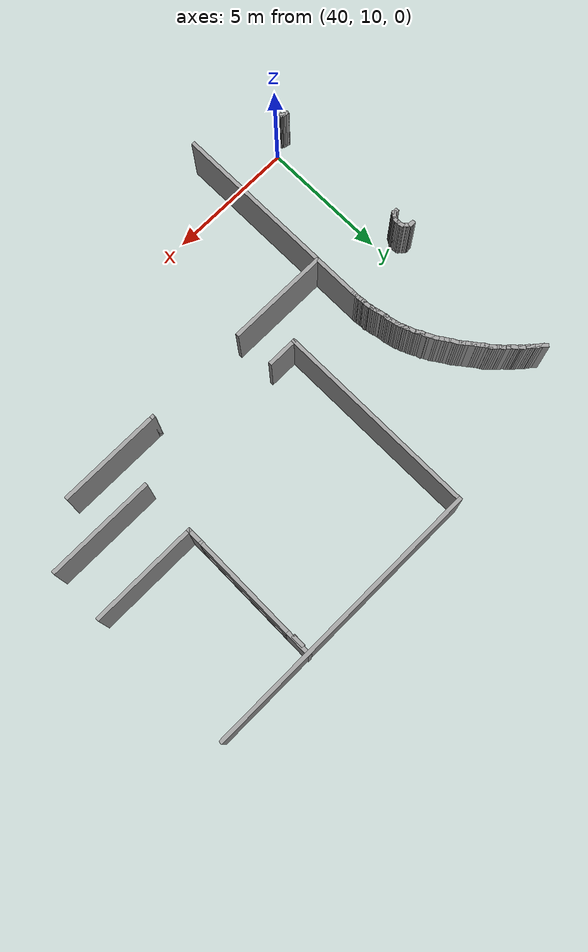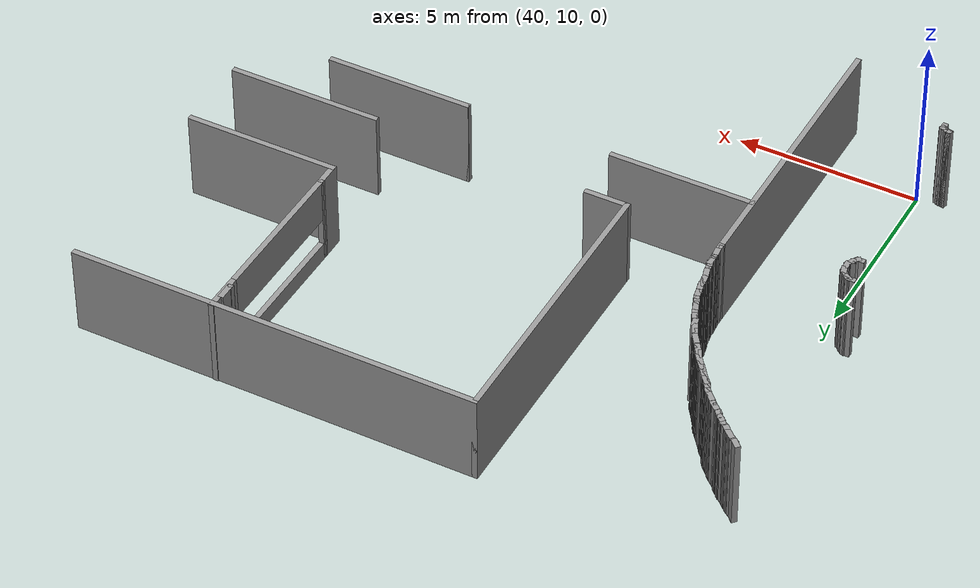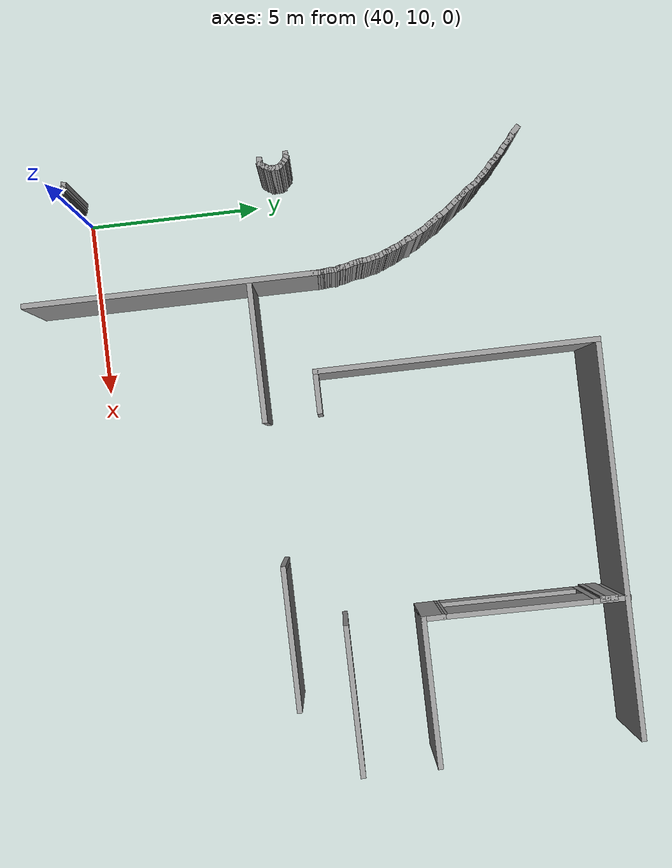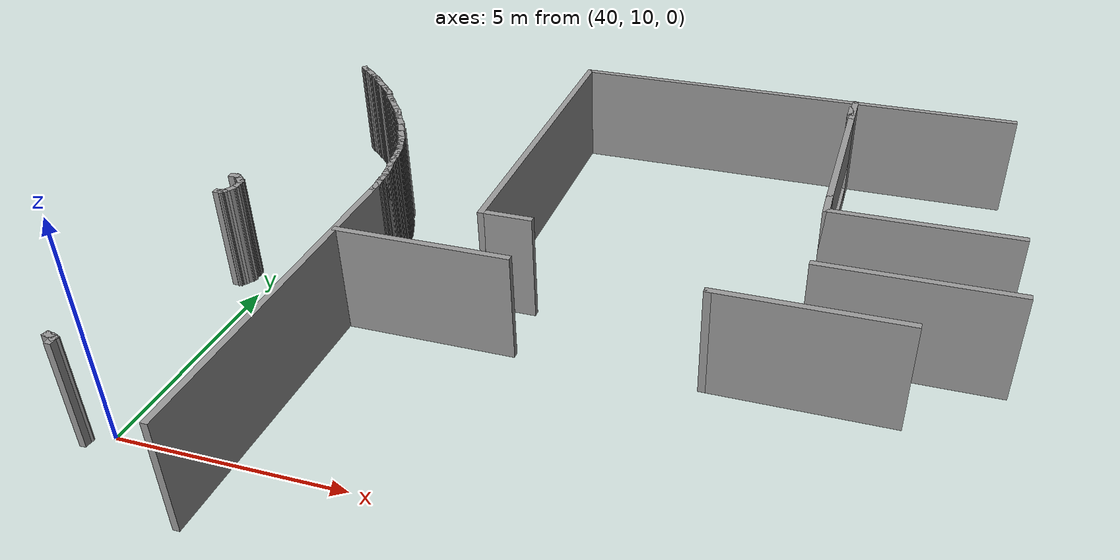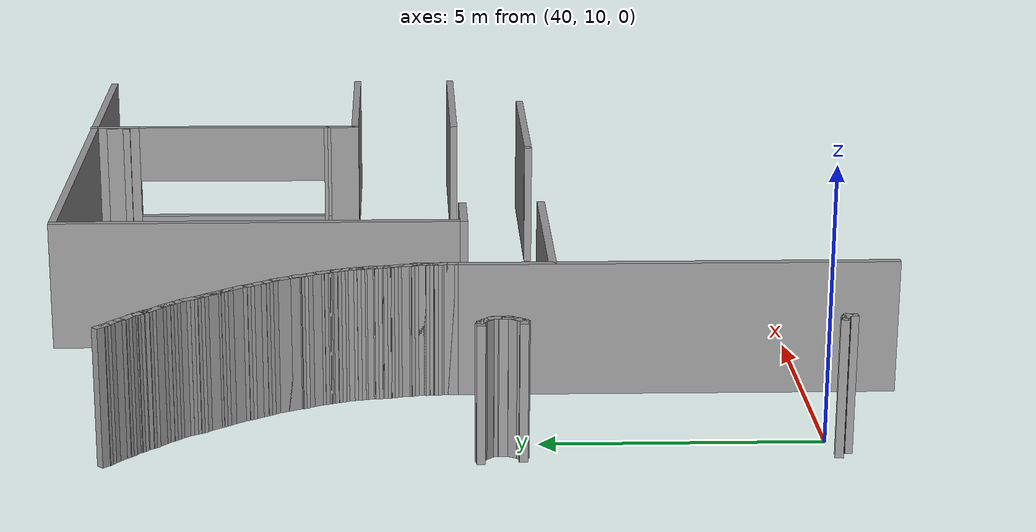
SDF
<sdf version="1.6">
 <model name="draft3">
  <pose>34.2026 -2.81154 0 0 -0 0</pose>
  <link name="Wall_223">
   <collision name="Wall_223_Collision">
    <geometry><box><size>0.299624 0.15 2.5</size></box></geometry>
    <pose>0 0 1.25 0 -0 0</pose>
   </collision>
   <visual name="Wall_223_Visual">
    <pose>0 0 1.25 0 -0 0</pose>
    <geometry><box><size>0.299624 0.15 2.5</size></box></geometry>
    <material>
     <script><uri>file://media/materials/scripts/gazebo.material</uri><name>Gazebo/Grey</name></script>
     <ambient>1 1 1 1</ambient>
    </material>
   </visual>
   <pose>5.04525 25.2209 0 0 0 -0.785398</pose>
  </link>
  <link name="Wall_224">
   <collision name="Wall_224_Collision">
    <geometry><box><size>0.329879 0.15 2.5</size></box></geometry>
    <pose>0 0 1.25 0 -0 0</pose>
   </collision>
   <visual name="Wall_224_Visual">
    <pose>0 0 1.25 0 -0 0</pose>
    <geometry><box><size>0.329879 0.15 2.5</size></box></geometry>
    <material>
     <script><uri>file://media/materials/scripts/gazebo.material</uri><name>Gazebo/Grey</name></script>
     <ambient>1 1 1 1</ambient>
    </material>
   </visual>
   <pose>5.17088 25.1151 0 0 0 -0.628796</pose>
  </link>
  <link name="Wall_225">
   <collision name="Wall_225_Collision">
    <geometry><box><size>0.30925 0.15 2.5</size></box></geometry>
    <pose>0 0 1.25 0 -0 0</pose>
   </collision>
   <visual name="Wall_225_Visual">
    <pose>0 0 1.25 0 -0 0</pose>
    <geometry><box><size>0.30925 0.15 2.5</size></box></geometry>
    <material>
     <script><uri>file://media/materials/scripts/gazebo.material</uri><name>Gazebo/Grey</name></script>
     <ambient>1 1 1 1</ambient>
    </material>
   </visual>
   <pose>5.30313 25.0093 0 0 0 -0.726642</pose>
  </link>
  <link name="Wall_226">
   <collision name="Wall_226_Collision">
    <geometry><box><size>0.299624 0.15 2.5</size></box></geometry>
    <pose>0 0 1.25 0 -0 0</pose>
   </collision>
   <visual name="Wall_226_Visual">
    <pose>0 0 1.25 0 -0 0</pose>
    <geometry><box><size>0.299624 0.15 2.5</size></box></geometry>
    <material>
     <script><uri>file://media/materials/scripts/gazebo.material</uri><name>Gazebo/Grey</name></script>
     <ambient>1 1 1 1</ambient>
    </material>
   </visual>
   <pose>5.41555 24.9035 0 0 0 -0.785398</pose>
  </link>
  <link name="Wall_227">
   <collision name="Wall_227_Collision">
    <geometry><box><size>0.329879 0.15 2.5</size></box></geometry>
    <pose>0 0 1.25 0 -0 0</pose>
   </collision>
   <visual name="Wall_227_Visual">
    <pose>0 0 1.25 0 -0 0</pose>
    <geometry><box><size>0.329879 0.15 2.5</size></box></geometry>
    <material>
     <script><uri>file://media/materials/scripts/gazebo.material</uri><name>Gazebo/Grey</name></script>
     <ambient>1 1 1 1</ambient>
    </material>
   </visual>
   <pose>5.54118 24.7977 0 0 0 -0.628796</pose>
  </link>
  <link name="Wall_228">
   <collision name="Wall_228_Collision">
    <geometry><box><size>0.253291 0.15 2.5</size></box></geometry>
    <pose>0 0 1.25 0 -0 0</pose>
   </collision>
   <visual name="Wall_228_Visual">
    <pose>0 0 1.25 0 -0 0</pose>
    <geometry><box><size>0.253291 0.15 2.5</size></box></geometry>
    <material>
     <script><uri>file://media/materials/scripts/gazebo.material</uri><name>Gazebo/Grey</name></script>
     <ambient>1 1 1 1</ambient>
    </material>
   </visual>
   <pose>5.64698 24.7051 0 0 0 -0.876058</pose>
  </link>
  <link name="Wall_229">
   <collision name="Wall_229_Collision">
    <geometry><box><size>0.253291 0.15 2.5</size></box></geometry>
    <pose>0 0 1.25 0 -0 0</pose>
   </collision>
   <visual name="Wall_229_Visual">
    <pose>0 0 1.25 0 -0 0</pose>
    <geometry><box><size>0.253291 0.15 2.5</size></box></geometry>
    <material>
     <script><uri>file://media/materials/scripts/gazebo.material</uri><name>Gazebo/Grey</name></script>
     <ambient>1 1 1 1</ambient>
    </material>
   </visual>
   <pose>5.71972 24.6324 0 0 0 -0.694738</pose>
  </link>
  <link name="Wall_230">
   <collision name="Wall_230_Collision">
    <geometry><box><size>0.300788 0.15 2.5</size></box></geometry>
    <pose>0 0 1.25 0 -0 0</pose>
   </collision>
   <visual name="Wall_230_Visual">
    <pose>0 0 1.25 0 -0 0</pose>
    <geometry><box><size>0.300788 0.15 2.5</size></box></geometry>
    <material>
     <script><uri>file://media/materials/scripts/gazebo.material</uri><name>Gazebo/Grey</name></script>
     <ambient>1 1 1 1</ambient>
    </material>
   </visual>
   <pose>5.80568 24.5398 0 0 0 -0.909753</pose>
  </link>
  <link name="Wall_231">
   <collision name="Wall_231_Collision">
    <geometry><box><size>0.30925 0.15 2.5</size></box></geometry>
    <pose>0 0 1.25 0 -0 0</pose>
   </collision>
   <visual name="Wall_231_Visual">
    <pose>0 0 1.25 0 -0 0</pose>
    <geometry><box><size>0.30925 0.15 2.5</size></box></geometry>
    <material>
     <script><uri>file://media/materials/scripts/gazebo.material</uri><name>Gazebo/Grey</name></script>
     <ambient>1 1 1 1</ambient>
    </material>
   </visual>
   <pose>5.91148 24.4274 0 0 0 -0.726642</pose>
  </link>
  <link name="Wall_232">
   <collision name="Wall_232_Collision">
    <geometry><box><size>0.30925 0.15 2.5</size></box></geometry>
    <pose>0 0 1.25 0 -0 0</pose>
   </collision>
   <visual name="Wall_232_Visual">
    <pose>0 0 1.25 0 -0 0</pose>
    <geometry><box><size>0.30925 0.15 2.5</size></box></geometry>
    <material>
     <script><uri>file://media/materials/scripts/gazebo.material</uri><name>Gazebo/Grey</name></script>
     <ambient>1 1 1 1</ambient>
    </material>
   </visual>
   <pose>6.03051 24.3216 0 0 0 -0.726642</pose>
  </link>
  <link name="Wall_233">
   <collision name="Wall_233_Collision">
    <geometry><box><size>0.30925 0.15 2.5</size></box></geometry>
    <pose>0 0 1.25 0 -0 0</pose>
   </collision>
   <visual name="Wall_233_Visual">
    <pose>0 0 1.25 0 -0 0</pose>
    <geometry><box><size>0.30925 0.15 2.5</size></box></geometry>
    <material>
     <script><uri>file://media/materials/scripts/gazebo.material</uri><name>Gazebo/Grey</name></script>
     <ambient>1 1 1 1</ambient>
    </material>
   </visual>
   <pose>6.14292 24.2092 0 0 0 -0.844154</pose>
  </link>
  <link name="Wall_234">
   <collision name="Wall_234_Collision">
    <geometry><box><size>0.299624 0.15 2.5</size></box></geometry>
    <pose>0 0 1.25 0 -0 0</pose>
   </collision>
   <visual name="Wall_234_Visual">
    <pose>0 0 1.25 0 -0 0</pose>
    <geometry><box><size>0.299624 0.15 2.5</size></box></geometry>
    <material>
     <script><uri>file://media/materials/scripts/gazebo.material</uri><name>Gazebo/Grey</name></script>
     <ambient>1 1 1 1</ambient>
    </material>
   </visual>
   <pose>6.24872 24.0968 0 0 0 -0.785398</pose>
  </link>
  <link name="Wall_235">
   <collision name="Wall_235_Collision">
    <geometry><box><size>0.290584 0.15 2.5</size></box></geometry>
    <pose>0 0 1.25 0 -0 0</pose>
   </collision>
   <visual name="Wall_235_Visual">
    <pose>0 0 1.25 0 -0 0</pose>
    <geometry><box><size>0.290584 0.15 2.5</size></box></geometry>
    <material>
     <script><uri>file://media/materials/scripts/gazebo.material</uri><name>Gazebo/Grey</name></script>
     <ambient>1 1 1 1</ambient>
    </material>
   </visual>
   <pose>6.34791 23.991 0 0 0 -0.851966</pose>
  </link>
  <link name="Wall_236">
   <collision name="Wall_236_Collision">
    <geometry><box><size>0.304229 0.15 2.5</size></box></geometry>
    <pose>0 0 1.25 0 -0 0</pose>
   </collision>
   <visual name="Wall_236_Visual">
    <pose>0 0 1.25 0 -0 0</pose>
    <geometry><box><size>0.304229 0.15 2.5</size></box></geometry>
    <material>
     <script><uri>file://media/materials/scripts/gazebo.material</uri><name>Gazebo/Grey</name></script>
     <ambient>1 1 1 1</ambient>
    </material>
   </visual>
   <pose>6.43387 23.872 0 0 0 -1.03038</pose>
  </link>
  <link name="Wall_237">
   <collision name="Wall_237_Collision">
    <geometry><box><size>0.274764 0.15 2.5</size></box></geometry>
    <pose>0 0 1.25 0 -0 0</pose>
   </collision>
   <visual name="Wall_237_Visual">
    <pose>0 0 1.25 0 -0 0</pose>
    <geometry><box><size>0.274764 0.15 2.5</size></box></geometry>
    <material>
     <script><uri>file://media/materials/scripts/gazebo.material</uri><name>Gazebo/Grey</name></script>
     <ambient>1 1 1 1</ambient>
    </material>
   </visual>
   <pose>6.50661 23.7529 0 0 0 -1.0122</pose>
  </link>
  <link name="Wall_238">
   <collision name="Wall_238_Collision">
    <geometry><box><size>0.30925 0.15 2.5</size></box></geometry>
    <pose>0 0 1.25 0 -0 0</pose>
   </collision>
   <visual name="Wall_238_Visual">
    <pose>0 0 1.25 0 -0 0</pose>
    <geometry><box><size>0.30925 0.15 2.5</size></box></geometry>
    <material>
     <script><uri>file://media/materials/scripts/gazebo.material</uri><name>Gazebo/Grey</name></script>
     <ambient>1 1 1 1</ambient>
    </material>
   </visual>
   <pose>6.59257 23.6405 0 0 0 -0.844154</pose>
  </link>
  <link name="Wall_239">
   <collision name="Wall_239_Collision">
    <geometry><box><size>0.28225 0.15 2.5</size></box></geometry>
    <pose>0 0 1.25 0 -0 0</pose>
   </collision>
   <visual name="Wall_239_Visual">
    <pose>0 0 1.25 0 -0 0</pose>
    <geometry><box><size>0.28225 0.15 2.5</size></box></geometry>
    <material>
     <script><uri>file://media/materials/scripts/gazebo.material</uri><name>Gazebo/Grey</name></script>
     <ambient>1 1 1 1</ambient>
    </material>
   </visual>
   <pose>6.68515 23.5281 0 0 0 -0.927295</pose>
  </link>
  <link name="Wall_240">
   <collision name="Wall_240_Collision">
    <geometry><box><size>0.348375 0.15 2.5</size></box></geometry>
    <pose>0 0 1.25 0 -0 0</pose>
   </collision>
   <visual name="Wall_240_Visual">
    <pose>0 0 1.25 0 -0 0</pose>
    <geometry><box><size>0.348375 0.15 2.5</size></box></geometry>
    <material>
     <script><uri>file://media/materials/scripts/gazebo.material</uri><name>Gazebo/Grey</name></script>
     <ambient>1 1 1 1</ambient>
    </material>
   </visual>
   <pose>6.78434 23.3959 0 0 0 -0.927295</pose>
  </link>
  <link name="Wall_241">
   <collision name="Wall_241_Collision">
    <geometry><box><size>0.337963 0.15 2.5</size></box></geometry>
    <pose>0 0 1.25 0 -0 0</pose>
   </collision>
   <visual name="Wall_241_Visual">
    <pose>0 0 1.25 0 -0 0</pose>
    <geometry><box><size>0.337963 0.15 2.5</size></box></geometry>
    <material>
     <script><uri>file://media/materials/scripts/gazebo.material</uri><name>Gazebo/Grey</name></script>
     <ambient>1 1 1 1</ambient>
    </material>
   </visual>
   <pose>6.90336 23.2438 0 0 0 -0.885067</pose>
  </link>
  <link name="Wall_242">
   <collision name="Wall_242_Collision">
    <geometry><box><size>0.366906 0.15 2.5</size></box></geometry>
    <pose>0 0 1.25 0 -0 0</pose>
   </collision>
   <visual name="Wall_242_Visual">
    <pose>0 0 1.25 0 -0 0</pose>
    <geometry><box><size>0.366906 0.15 2.5</size></box></geometry>
    <material>
     <script><uri>file://media/materials/scripts/gazebo.material</uri><name>Gazebo/Grey</name></script>
     <ambient>1 1 1 1</ambient>
    </material>
   </visual>
   <pose>7.029 23.0851 0 0 0 -0.915101</pose>
  </link>
  <link name="Wall_243">
   <collision name="Wall_243_Collision">
    <geometry><box><size>0.29786 0.15 2.5</size></box></geometry>
    <pose>0 0 1.25 0 -0 0</pose>
   </collision>
   <visual name="Wall_243_Visual">
    <pose>0 0 1.25 0 -0 0</pose>
    <geometry><box><size>0.29786 0.15 2.5</size></box></geometry>
    <material>
     <script><uri>file://media/materials/scripts/gazebo.material</uri><name>Gazebo/Grey</name></script>
     <ambient>1 1 1 1</ambient>
    </material>
   </visual>
   <pose>7.12819 22.933 0 0 0 -1.10715</pose>
  </link>
  <link name="Wall_244">
   <collision name="Wall_244_Collision">
    <geometry><box><size>0.359106 0.15 2.5</size></box></geometry>
    <pose>0 0 1.25 0 -0 0</pose>
   </collision>
   <visual name="Wall_244_Visual">
    <pose>0 0 1.25 0 -0 0</pose>
    <geometry><box><size>0.359106 0.15 2.5</size></box></geometry>
    <material>
     <script><uri>file://media/materials/scripts/gazebo.material</uri><name>Gazebo/Grey</name></script>
     <ambient>1 1 1 1</ambient>
    </material>
   </visual>
   <pose>7.22076 22.7809 0 0 0 -0.965252</pose>
  </link>
  <link name="Wall_245">
   <collision name="Wall_245_Collision">
    <geometry><box><size>0.322433 0.15 2.5</size></box></geometry>
    <pose>0 0 1.25 0 -0 0</pose>
   </collision>
   <visual name="Wall_245_Visual">
    <pose>0 0 1.25 0 -0 0</pose>
    <geometry><box><size>0.322433 0.15 2.5</size></box></geometry>
    <material>
     <script><uri>file://media/materials/scripts/gazebo.material</uri><name>Gazebo/Grey</name></script>
     <ambient>1 1 1 1</ambient>
    </material>
   </visual>
   <pose>7.32656 22.6222 0 0 0 -1.00407</pose>
  </link>
  <link name="Wall_246">
   <collision name="Wall_246_Collision">
    <geometry><box><size>0.329879 0.15 2.5</size></box></geometry>
    <pose>0 0 1.25 0 -0 0</pose>
   </collision>
   <visual name="Wall_246_Visual">
    <pose>0 0 1.25 0 -0 0</pose>
    <geometry><box><size>0.329879 0.15 2.5</size></box></geometry>
    <material>
     <script><uri>file://media/materials/scripts/gazebo.material</uri><name>Gazebo/Grey</name></script>
     <ambient>1 1 1 1</ambient>
    </material>
   </visual>
   <pose>7.42575 22.4767 0 0 0 -0.942</pose>
  </link>
  <link name="Wall_247">
   <collision name="Wall_247_Collision">
    <geometry><box><size>0.327432 0.15 2.5</size></box></geometry>
    <pose>0 0 1.25 0 -0 0</pose>
   </collision>
   <visual name="Wall_247_Visual">
    <pose>0 0 1.25 0 -0 0</pose>
    <geometry><box><size>0.327432 0.15 2.5</size></box></geometry>
    <material>
     <script><uri>file://media/materials/scripts/gazebo.material</uri><name>Gazebo/Grey</name></script>
     <ambient>1 1 1 1</ambient>
    </material>
   </visual>
   <pose>7.51832 22.3246 0 0 0 -1.10715</pose>
  </link>
  <link name="Wall_248">
   <collision name="Wall_248_Collision">
    <geometry><box><size>0.327432 0.15 2.5</size></box></geometry>
    <pose>0 0 1.25 0 -0 0</pose>
   </collision>
   <visual name="Wall_248_Visual">
    <pose>0 0 1.25 0 -0 0</pose>
    <geometry><box><size>0.327432 0.15 2.5</size></box></geometry>
    <material>
     <script><uri>file://media/materials/scripts/gazebo.material</uri><name>Gazebo/Grey</name></script>
     <ambient>1 1 1 1</ambient>
    </material>
   </visual>
   <pose>7.59767 22.1659 0 0 0 -1.10715</pose>
  </link>
  <link name="Wall_250">
   <collision name="Wall_250_Collision">
    <geometry><box><size>0.284869 0.15 2.5</size></box></geometry>
    <pose>0 0 1.25 0 -0 0</pose>
   </collision>
   <visual name="Wall_250_Visual">
    <pose>0 0 1.25 0 -0 0</pose>
    <geometry><box><size>0.284869 0.15 2.5</size></box></geometry>
    <material>
     <script><uri>file://media/materials/scripts/gazebo.material</uri><name>Gazebo/Grey</name></script>
     <ambient>1 1 1 1</ambient>
    </material>
   </visual>
   <pose>7.69025 21.994 0 0 0 -1.3734</pose>
  </link>
  <link name="Wall_251">
   <collision name="Wall_251_Collision">
    <geometry><box><size>0.304229 0.15 2.5</size></box></geometry>
    <pose>0 0 1.25 0 -0 0</pose>
   </collision>
   <visual name="Wall_251_Visual">
    <pose>0 0 1.25 0 -0 0</pose>
    <geometry><box><size>0.304229 0.15 2.5</size></box></geometry>
    <material>
     <script><uri>file://media/materials/scripts/gazebo.material</uri><name>Gazebo/Grey</name></script>
     <ambient>1 1 1 1</ambient>
    </material>
   </visual>
   <pose>7.74315 21.8618 0 0 0 -1.03038</pose>
  </link>
  <link name="Wall_252">
   <collision name="Wall_252_Collision">
    <geometry><box><size>0.209144 0.15 2.5</size></box></geometry>
    <pose>0 0 1.25 0 -0 0</pose>
   </collision>
   <visual name="Wall_252_Visual">
    <pose>0 0 1.25 0 -0 0</pose>
    <geometry><box><size>0.209144 0.15 2.5</size></box></geometry>
    <material>
     <script><uri>file://media/materials/scripts/gazebo.material</uri><name>Gazebo/Grey</name></script>
     <ambient>1 1 1 1</ambient>
    </material>
   </visual>
   <pose>7.79605 21.7692 0 0 0 -1.10715</pose>
  </link>
  <link name="Wall_253">
   <collision name="Wall_253_Collision">
    <geometry><box><size>0.268288 0.15 2.5</size></box></geometry>
    <pose>0 0 1.25 0 -0 0</pose>
   </collision>
   <visual name="Wall_253_Visual">
    <pose>0 0 1.25 0 -0 0</pose>
    <geometry><box><size>0.268288 0.15 2.5</size></box></geometry>
    <material>
     <script><uri>file://media/materials/scripts/gazebo.material</uri><name>Gazebo/Grey</name></script>
     <ambient>1 1 1 1</ambient>
    </material>
   </visual>
   <pose>7.83572 21.6898 0 0 0 -1.10715</pose>
  </link>
  <link name="Wall_254">
   <collision name="Wall_254_Collision">
    <geometry><box><size>0.275463 0.15 2.5</size></box></geometry>
    <pose>0 0 1.25 0 -0 0</pose>
   </collision>
   <visual name="Wall_254_Visual">
    <pose>0 0 1.25 0 -0 0</pose>
    <geometry><box><size>0.275463 0.15 2.5</size></box></geometry>
    <material>
     <script><uri>file://media/materials/scripts/gazebo.material</uri><name>Gazebo/Grey</name></script>
     <ambient>1 1 1 1</ambient>
    </material>
   </visual>
   <pose>7.88201 21.5774 0 0 0 -1.24905</pose>
  </link>
  <link name="Wall_255">
   <collision name="Wall_255_Collision">
    <geometry><box><size>0.250719 0.15 2.5</size></box></geometry>
    <pose>0 0 1.25 0 -0 0</pose>
   </collision>
   <visual name="Wall_255_Visual">
    <pose>0 0 1.25 0 -0 0</pose>
    <geometry><box><size>0.250719 0.15 2.5</size></box></geometry>
    <material>
     <script><uri>file://media/materials/scripts/gazebo.material</uri><name>Gazebo/Grey</name></script>
     <ambient>1 1 1 1</ambient>
    </material>
   </visual>
   <pose>7.92168 21.4716 0 0 0 -1.1659</pose>
  </link>
  <link name="Wall_256">
   <collision name="Wall_256_Collision">
    <geometry><box><size>0.209144 0.15 2.5</size></box></geometry>
    <pose>0 0 1.25 0 -0 0</pose>
   </collision>
   <visual name="Wall_256_Visual">
    <pose>0 0 1.25 0 -0 0</pose>
    <geometry><box><size>0.209144 0.15 2.5</size></box></geometry>
    <material>
     <script><uri>file://media/materials/scripts/gazebo.material</uri><name>Gazebo/Grey</name></script>
     <ambient>1 1 1 1</ambient>
    </material>
   </visual>
   <pose>7.95475 21.3989 0 0 0 -1.10715</pose>
  </link>
  <link name="Wall_257">
   <collision name="Wall_257_Collision">
    <geometry><box><size>0.246279 0.15 2.5</size></box></geometry>
    <pose>0 0 1.25 0 -0 0</pose>
   </collision>
   <visual name="Wall_257_Visual">
    <pose>0 0 1.25 0 -0 0</pose>
    <geometry><box><size>0.246279 0.15 2.5</size></box></geometry>
    <material>
     <script><uri>file://media/materials/scripts/gazebo.material</uri><name>Gazebo/Grey</name></script>
     <ambient>1 1 1 1</ambient>
    </material>
   </visual>
   <pose>7.9812 21.3261 0 0 0 -1.2925</pose>
  </link>
  <link name="Wall_258">
   <collision name="Wall_258_Collision">
    <geometry><box><size>0.280251 0.15 2.5</size></box></geometry>
    <pose>0 0 1.25 0 -0 0</pose>
   </collision>
   <visual name="Wall_258_Visual">
    <pose>0 0 1.25 0 -0 0</pose>
    <geometry><box><size>0.280251 0.15 2.5</size></box></geometry>
    <material>
     <script><uri>file://media/materials/scripts/gazebo.material</uri><name>Gazebo/Grey</name></script>
     <ambient>1 1 1 1</ambient>
    </material>
   </visual>
   <pose>8.02087 21.2203 0 0 0 -1.15257</pose>
  </link>
  <link name="Wall_259">
   <collision name="Wall_259_Collision">
    <geometry><box><size>0.259056 0.15 2.5</size></box></geometry>
    <pose>0 0 1.25 0 -0 0</pose>
   </collision>
   <visual name="Wall_259_Visual">
    <pose>0 0 1.25 0 -0 0</pose>
    <geometry><box><size>0.259056 0.15 2.5</size></box></geometry>
    <material>
     <script><uri>file://media/materials/scripts/gazebo.material</uri><name>Gazebo/Grey</name></script>
     <ambient>1 1 1 1</ambient>
    </material>
   </visual>
   <pose>8.06055 21.1079 0 0 0 -1.32582</pose>
  </link>
  <link name="Wall_260">
   <collision name="Wall_260_Collision">
    <geometry><box><size>0.284869 0.15 2.5</size></box></geometry>
    <pose>0 0 1.25 0 -0 0</pose>
   </collision>
   <visual name="Wall_260_Visual">
    <pose>0 0 1.25 0 -0 0</pose>
    <geometry><box><size>0.284869 0.15 2.5</size></box></geometry>
    <material>
     <script><uri>file://media/materials/scripts/gazebo.material</uri><name>Gazebo/Grey</name></script>
     <ambient>1 1 1 1</ambient>
    </material>
   </visual>
   <pose>8.087 20.9889 0 0 0 -1.3734</pose>
  </link>
  <link name="Wall_261">
   <collision name="Wall_261_Collision">
    <geometry><box><size>0.259056 0.15 2.5</size></box></geometry>
    <pose>0 0 1.25 0 -0 0</pose>
   </collision>
   <visual name="Wall_261_Visual">
    <pose>0 0 1.25 0 -0 0</pose>
    <geometry><box><size>0.259056 0.15 2.5</size></box></geometry>
    <material>
     <script><uri>file://media/materials/scripts/gazebo.material</uri><name>Gazebo/Grey</name></script>
     <ambient>1 1 1 1</ambient>
    </material>
   </visual>
   <pose>8.11345 20.8699 0 0 0 -1.32582</pose>
  </link>
  <link name="Wall_262">
   <collision name="Wall_262_Collision">
    <geometry><box><size>0.271928 0.15 2.5</size></box></geometry>
    <pose>0 0 1.25 0 -0 0</pose>
   </collision>
   <visual name="Wall_262_Visual">
    <pose>0 0 1.25 0 -0 0</pose>
    <geometry><box><size>0.271928 0.15 2.5</size></box></geometry>
    <material>
     <script><uri>file://media/materials/scripts/gazebo.material</uri><name>Gazebo/Grey</name></script>
     <ambient>1 1 1 1</ambient>
    </material>
   </visual>
   <pose>8.1399 20.7575 0 0 0 -1.35213</pose>
  </link>
  <link name="Wall_263">
   <collision name="Wall_263_Collision">
    <geometry><box><size>0.242575 0.15 2.5</size></box></geometry>
    <pose>0 0 1.25 0 -0 0</pose>
   </collision>
   <visual name="Wall_263_Visual">
    <pose>0 0 1.25 0 -0 0</pose>
    <geometry><box><size>0.242575 0.15 2.5</size></box></geometry>
    <material>
     <script><uri>file://media/materials/scripts/gazebo.material</uri><name>Gazebo/Grey</name></script>
     <ambient>1 1 1 1</ambient>
    </material>
   </visual>
   <pose>8.15312 20.6517 0 0 0 -1.5708</pose>
  </link>
  <link name="Wall_264">
   <collision name="Wall_264_Collision">
    <geometry><box><size>0.217435 0.15 2.5</size></box></geometry>
    <pose>0 0 1.25 0 -0 0</pose>
   </collision>
   <visual name="Wall_264_Visual">
    <pose>0 0 1.25 0 -0 0</pose>
    <geometry><box><size>0.217435 0.15 2.5</size></box></geometry>
    <material>
     <script><uri>file://media/materials/scripts/gazebo.material</uri><name>Gazebo/Grey</name></script>
     <ambient>1 1 1 1</ambient>
    </material>
   </visual>
   <pose>8.15973 20.5723 0 0 0 -1.3734</pose>
  </link>
  <link name="Wall_265">
   <collision name="Wall_265_Collision">
    <geometry><box><size>0.243515 0.15 2.5</size></box></geometry>
    <pose>0 0 1.25 0 -0 0</pose>
   </collision>
   <visual name="Wall_265_Visual">
    <pose>0 0 1.25 0 -0 0</pose>
    <geometry><box><size>0.243515 0.15 2.5</size></box></geometry>
    <material>
     <script><uri>file://media/materials/scripts/gazebo.material</uri><name>Gazebo/Grey</name></script>
     <ambient>1 1 1 1</ambient>
    </material>
   </visual>
   <pose>8.17296 20.493 0 0 0 -1.4289</pose>
  </link>
  <link name="Wall_266">
   <collision name="Wall_266_Collision">
    <geometry><box><size>0.271928 0.15 2.5</size></box></geometry>
    <pose>0 0 1.25 0 -0 0</pose>
   </collision>
   <visual name="Wall_266_Visual">
    <pose>0 0 1.25 0 -0 0</pose>
    <geometry><box><size>0.271928 0.15 2.5</size></box></geometry>
    <material>
     <script><uri>file://media/materials/scripts/gazebo.material</uri><name>Gazebo/Grey</name></script>
     <ambient>1 1 1 1</ambient>
    </material>
   </visual>
   <pose>8.1928 20.3872 0 0 0 -1.35213</pose>
  </link>
  <link name="Wall_267">
   <collision name="Wall_267_Collision">
    <geometry><box><size>0.288073 0.15 2.5</size></box></geometry>
    <pose>0 0 1.25 0 -0 0</pose>
   </collision>
   <visual name="Wall_267_Visual">
    <pose>0 0 1.25 0 -0 0</pose>
    <geometry><box><size>0.288073 0.15 2.5</size></box></geometry>
    <material>
     <script><uri>file://media/materials/scripts/gazebo.material</uri><name>Gazebo/Grey</name></script>
     <ambient>1 1 1 1</ambient>
    </material>
   </visual>
   <pose>8.22586 20.2615 0 0 0 -1.27934</pose>
  </link>
  <link name="Wall_268">
   <collision name="Wall_268_Collision">
    <geometry><box><size>0.29786 0.15 2.5</size></box></geometry>
    <pose>0 0 1.25 0 -0 0</pose>
   </collision>
   <visual name="Wall_268_Visual">
    <pose>0 0 1.25 0 -0 0</pose>
    <geometry><box><size>0.29786 0.15 2.5</size></box></geometry>
    <material>
     <script><uri>file://media/materials/scripts/gazebo.material</uri><name>Gazebo/Grey</name></script>
     <ambient>1 1 1 1</ambient>
    </material>
   </visual>
   <pose>8.25892 20.1227 0 0 0 -1.39094</pose>
  </link>
  <link name="Wall_269">
   <collision name="Wall_269_Collision">
    <geometry><box><size>0.242575 0.15 2.5</size></box></geometry>
    <pose>0 0 1.25 0 -0 0</pose>
   </collision>
   <visual name="Wall_269_Visual">
    <pose>0 0 1.25 0 -0 0</pose>
    <geometry><box><size>0.242575 0.15 2.5</size></box></geometry>
    <material>
     <script><uri>file://media/materials/scripts/gazebo.material</uri><name>Gazebo/Grey</name></script>
     <ambient>1 1 1 1</ambient>
    </material>
   </visual>
   <pose>8.27876 20.0036 0 0 0 -1.4289</pose>
  </link>
  <link name="Wall_270">
   <collision name="Wall_270_Collision">
    <geometry><box><size>0.221219 0.15 2.5</size></box></geometry>
    <pose>0 0 1.25 0 -0 0</pose>
   </collision>
   <visual name="Wall_270_Visual">
    <pose>0 0 1.25 0 -0 0</pose>
    <geometry><box><size>0.221219 0.15 2.5</size></box></geometry>
    <material>
     <script><uri>file://media/materials/scripts/gazebo.material</uri><name>Gazebo/Grey</name></script>
     <ambient>1 1 1 1</ambient>
    </material>
   </visual>
   <pose>8.2986 19.9243 0 0 0 -1.19029</pose>
  </link>
  <link name="Wall_271">
   <collision name="Wall_271_Collision">
    <geometry><box><size>0.22935 0.15 2.5</size></box></geometry>
    <pose>0 0 1.25 0 -0 0</pose>
   </collision>
   <visual name="Wall_271_Visual">
    <pose>0 0 1.25 0 -0 0</pose>
    <geometry><box><size>0.22935 0.15 2.5</size></box></geometry>
    <material>
     <script><uri>file://media/materials/scripts/gazebo.material</uri><name>Gazebo/Grey</name></script>
     <ambient>1 1 1 1</ambient>
    </material>
   </visual>
   <pose>8.31182 19.8516 0 0 0 -1.5708</pose>
  </link>
  <link name="Wall_272">
   <collision name="Wall_272_Collision">
    <geometry><box><size>0.216125 0.15 2.5</size></box></geometry>
    <pose>0 0 1.25 0 -0 0</pose>
   </collision>
   <visual name="Wall_272_Visual">
    <pose>0 0 1.25 0 -0 0</pose>
    <geometry><box><size>0.216125 0.15 2.5</size></box></geometry>
    <material>
     <script><uri>file://media/materials/scripts/gazebo.material</uri><name>Gazebo/Grey</name></script>
     <ambient>1 1 1 1</ambient>
    </material>
   </visual>
   <pose>8.31182 19.7788 0 0 0 -1.5708</pose>
  </link>
  <link name="Wall_273">
   <collision name="Wall_273_Collision">
    <geometry><box><size>0.216125 0.15 2.5</size></box></geometry>
    <pose>0 0 1.25 0 -0 0</pose>
   </collision>
   <visual name="Wall_273_Visual">
    <pose>0 0 1.25 0 -0 0</pose>
    <geometry><box><size>0.216125 0.15 2.5</size></box></geometry>
    <material>
     <script><uri>file://media/materials/scripts/gazebo.material</uri><name>Gazebo/Grey</name></script>
     <ambient>1 1 1 1</ambient>
    </material>
   </visual>
   <pose>8.31182 19.7127 0 0 0 -1.5708</pose>
  </link>
  <link name="Wall_274">
   <collision name="Wall_274_Collision">
    <geometry><box><size>0.230445 0.15 2.5</size></box></geometry>
    <pose>0 0 1.25 0 -0 0</pose>
   </collision>
   <visual name="Wall_274_Visual">
    <pose>0 0 1.25 0 -0 0</pose>
    <geometry><box><size>0.230445 0.15 2.5</size></box></geometry>
    <material>
     <script><uri>file://media/materials/scripts/gazebo.material</uri><name>Gazebo/Grey</name></script>
     <ambient>1 1 1 1</ambient>
    </material>
   </visual>
   <pose>8.31843 19.64 0 0 0 -1.40565</pose>
  </link>
  <link name="Wall_275">
   <collision name="Wall_275_Collision">
    <geometry><box><size>0.22935 0.15 2.5</size></box></geometry>
    <pose>0 0 1.25 0 -0 0</pose>
   </collision>
   <visual name="Wall_275_Visual">
    <pose>0 0 1.25 0 -0 0</pose>
    <geometry><box><size>0.22935 0.15 2.5</size></box></geometry>
    <material>
     <script><uri>file://media/materials/scripts/gazebo.material</uri><name>Gazebo/Grey</name></script>
     <ambient>1 1 1 1</ambient>
    </material>
   </visual>
   <pose>8.32505 19.5606 0 0 0 -1.5708</pose>
  </link>
  <link name="Wall_276">
   <collision name="Wall_276_Collision">
    <geometry><box><size>0.256623 0.15 2.5</size></box></geometry>
    <pose>0 0 1.25 0 -0 0</pose>
   </collision>
   <visual name="Wall_276_Visual">
    <pose>0 0 1.25 0 -0 0</pose>
    <geometry><box><size>0.256623 0.15 2.5</size></box></geometry>
    <material>
     <script><uri>file://media/materials/scripts/gazebo.material</uri><name>Gazebo/Grey</name></script>
     <ambient>1 1 1 1</ambient>
    </material>
   </visual>
   <pose>8.33166 19.468 0 0 0 -1.44644</pose>
  </link>
  <link name="Wall_277">
   <collision name="Wall_277_Collision">
    <geometry><box><size>0.269025 0.15 2.5</size></box></geometry>
    <pose>0 0 1.25 0 -0 0</pose>
   </collision>
   <visual name="Wall_277_Visual">
    <pose>0 0 1.25 0 -0 0</pose>
    <geometry><box><size>0.269025 0.15 2.5</size></box></geometry>
    <material>
     <script><uri>file://media/materials/scripts/gazebo.material</uri><name>Gazebo/Grey</name></script>
     <ambient>1 1 1 1</ambient>
    </material>
   </visual>
   <pose>8.33827 19.3556 0 0 0 -1.5708</pose>
  </link>
  <link name="Wall_278">
   <collision name="Wall_278_Collision">
    <geometry><box><size>0.216125 0.15 2.5</size></box></geometry>
    <pose>0 0 1.25 0 -0 0</pose>
   </collision>
   <visual name="Wall_278_Visual">
    <pose>0 0 1.25 0 -0 0</pose>
    <geometry><box><size>0.216125 0.15 2.5</size></box></geometry>
    <material>
     <script><uri>file://media/materials/scripts/gazebo.material</uri><name>Gazebo/Grey</name></script>
     <ambient>1 1 1 1</ambient>
    </material>
   </visual>
   <pose>8.33827 19.263 0 0 0 -1.5708</pose>
  </link>
  <link name="Wall_280">
   <collision name="Wall_280_Collision">
    <geometry><box><size>8.25 0.15 2.5</size></box></geometry>
    <pose>0 0 1.25 0 -0 0</pose>
   </collision>
   <visual name="Wall_280_Visual">
    <pose>0 0 1.25 0 -0 0</pose>
    <geometry><box><size>8.25 0.15 2.5</size></box></geometry>
    <material>
     <script><uri>file://media/materials/scripts/gazebo.material</uri><name>Gazebo/Grey</name></script>
     <ambient>1 1 1 1</ambient>
    </material>
   </visual>
   <pose>8.33827 15.2461 0 0 0 -1.5708</pose>
  </link>
  <link name="Wall_282">
   <collision name="Wall_282_Collision">
    <geometry><box><size>4 0.15 2.5</size></box></geometry>
    <pose>0 0 1.25 0 -0 0</pose>
   </collision>
   <visual name="Wall_282_Visual">
    <pose>0 0 1.25 0 -0 0</pose>
    <geometry><box><size>4 0.15 2.5</size></box></geometry>
    <material>
     <script><uri>file://media/materials/scripts/gazebo.material</uri><name>Gazebo/Grey</name></script>
     <ambient>1 1 1 1</ambient>
    </material>
   </visual>
   <pose>10.3002 17.4426 0 0 -0 3.14159</pose>
  </link>
  <link name="Wall_284">
   <collision name="Wall_284_Collision">
    <geometry><box><size>1.25 0.15 2.5</size></box></geometry>
    <pose>0 0 1.25 0 -0 0</pose>
   </collision>
   <visual name="Wall_284_Visual">
    <pose>0 0 1.25 0 -0 0</pose>
    <geometry><box><size>1.25 0.15 2.5</size></box></geometry>
    <material>
     <script><uri>file://media/materials/scripts/gazebo.material</uri><name>Gazebo/Grey</name></script>
     <ambient>1 1 1 1</ambient>
    </material>
   </visual>
   <pose>11.5942 18.9799 0 0 -0 3.14159</pose>
  </link>
  <link name="Wall_285">
   <collision name="Wall_285_Collision">
    <geometry><box><size>8 0.15 2.5</size></box></geometry>
    <pose>0 0 1.25 0 -0 0</pose>
   </collision>
   <visual name="Wall_285_Visual">
    <pose>0 0 1.25 0 -0 0</pose>
    <geometry><box><size>8 0.15 2.5</size></box></geometry>
    <material>
     <script><uri>file://media/materials/scripts/gazebo.material</uri><name>Gazebo/Grey</name></script>
     <ambient>1 1 1 1</ambient>
    </material>
   </visual>
   <pose>11.0442 22.9049 0 0 -0 1.5708</pose>
  </link>
  <link name="Wall_286">
   <collision name="Wall_286_Collision">
    <geometry><box><size>11.25 0.15 2.5</size></box></geometry>
    <pose>0 0 1.25 0 -0 0</pose>
   </collision>
   <visual name="Wall_286_Visual">
    <pose>0 0 1.25 0 -0 0</pose>
    <geometry><box><size>11.25 0.15 2.5</size></box></geometry>
    <material>
     <script><uri>file://media/materials/scripts/gazebo.material</uri><name>Gazebo/Grey</name></script>
     <ambient>1 1 1 1</ambient>
    </material>
   </visual>
   <pose>16.5942 26.8299 0 0 -0 0</pose>
  </link>
  <link name="Wall_288">
   <collision name="Wall_288_Collision">
    <geometry><box><size>0.16 0.15 2.5</size></box></geometry>
    <pose>0 0 1.25 0 -0 0</pose>
   </collision>
   <visual name="Wall_288_Visual">
    <pose>0 0 1.25 0 -0 0</pose>
    <geometry><box><size>0.16 0.15 2.5</size></box></geometry>
    <material>
     <script><uri>file://media/materials/scripts/gazebo.material</uri><name>Gazebo/Grey</name></script>
     <ambient>1 1 1 1</ambient>
    </material>
   </visual>
   <pose>18.1771 26.1406 0 0 -0 0</pose>
  </link>
  <link name="Wall_289">
   <collision name="Wall_289_Collision">
    <geometry><box><size>0.5 0.15 2.5</size></box></geometry>
    <pose>0 0 1.25 0 -0 0</pose>
   </collision>
   <visual name="Wall_289_Visual">
    <pose>0 0 1.25 0 -0 0</pose>
    <geometry><box><size>0.5 0.15 2.5</size></box></geometry>
    <material>
     <script><uri>file://media/materials/scripts/gazebo.material</uri><name>Gazebo/Grey</name></script>
     <ambient>1 1 1 1</ambient>
    </material>
   </visual>
   <pose>18.1821 26.3156 0 0 -0 1.5708</pose>
  </link>
  <link name="Wall_291">
   <collision name="Wall_291_Collision">
    <geometry><box><size>0.75 0.15 2.5</size></box></geometry>
    <pose>0 0 1.25 0 -0 0</pose>
   </collision>
   <visual name="Wall_291_Visual">
    <pose>0 0 1.25 0 -0 0</pose>
    <geometry><box><size>0.75 0.15 2.5</size></box></geometry>
    <material>
     <script><uri>file://media/materials/scripts/gazebo.material</uri><name>Gazebo/Grey</name></script>
     <ambient>1 1 1 1</ambient>
    </material>
   </visual>
   <pose>18.1721 21.4714 0 0 0 -1.5708</pose>
  </link>
  <link name="Wall_292">
   <collision name="Wall_292_Collision">
    <geometry><box><size>4.25 0.15 2.5</size></box></geometry>
    <pose>0 0 1.25 0 -0 0</pose>
   </collision>
   <visual name="Wall_292_Visual">
    <pose>0 0 1.25 0 -0 0</pose>
    <geometry><box><size>4.25 0.15 2.5</size></box></geometry>
    <material>
     <script><uri>file://media/materials/scripts/gazebo.material</uri><name>Gazebo/Grey</name></script>
     <ambient>1 1 1 1</ambient>
    </material>
   </visual>
   <pose>20.2221 21.1714 0 0 -0 0</pose>
  </link>
  <link name="Wall_294">
   <collision name="Wall_294_Collision">
    <geometry><box><size>4.25 0.15 2.5</size></box></geometry>
    <pose>0 0 1.25 0 -0 0</pose>
   </collision>
   <visual name="Wall_294_Visual">
    <pose>0 0 1.25 0 -0 0</pose>
    <geometry><box><size>4.25 0.15 2.5</size></box></geometry>
    <material>
     <script><uri>file://media/materials/scripts/gazebo.material</uri><name>Gazebo/Grey</name></script>
     <ambient>1 1 1 1</ambient>
    </material>
   </visual>
   <pose>20.2221 19.0204 0 0 -0 0</pose>
  </link>
  <link name="Wall_296">
   <collision name="Wall_296_Collision">
    <geometry><box><size>0.16 0.15 2.5</size></box></geometry>
    <pose>0 0 1.25 0 -0 0</pose>
   </collision>
   <visual name="Wall_296_Visual">
    <pose>0 0 1.25 0 -0 0</pose>
    <geometry><box><size>0.16 0.15 2.5</size></box></geometry>
    <material>
     <script><uri>file://media/materials/scripts/gazebo.material</uri><name>Gazebo/Grey</name></script>
     <ambient>1 1 1 1</ambient>
    </material>
   </visual>
   <pose>16.3566 17.4831 0 0 -0 0</pose>
  </link>
  <link name="Wall_297">
   <collision name="Wall_297_Collision">
    <geometry><box><size>4.07364 0.15 2.5</size></box></geometry>
    <pose>0 0 1.25 0 -0 0</pose>
   </collision>
   <visual name="Wall_297_Visual">
    <pose>0 0 1.25 0 -0 0</pose>
    <geometry><box><size>4.07364 0.15 2.5</size></box></geometry>
    <material>
     <script><uri>file://media/materials/scripts/gazebo.material</uri><name>Gazebo/Grey</name></script>
     <ambient>1 1 1 1</ambient>
    </material>
   </visual>
   <pose>18.3235 17.4831 0 0 -0 0</pose>
  </link>
  <link name="Wall_438">
   <collision name="Wall_438_Collision">
    <geometry><box><size>0.25 0.15 2.5</size></box></geometry>
    <pose>0 0 1.25 0 -0 0</pose>
   </collision>
   <visual name="Wall_438_Visual">
    <pose>0 0 1.25 0 -0 0</pose>
    <geometry><box><size>0.25 0.15 2.5</size></box></geometry>
    <material>
     <script><uri>file://media/materials/scripts/gazebo.material</uri><name>Gazebo/Grey</name></script>
     <ambient>1 1 1 1</ambient>
    </material>
   </visual>
   <pose>5.33045 12.5496 0 0 -0 1.5708</pose>
  </link>
  <link name="Wall_439">
   <collision name="Wall_439_Collision">
    <geometry><box><size>0.238959 0.15 2.5</size></box></geometry>
    <pose>0 0 1.25 0 -0 0</pose>
   </collision>
   <visual name="Wall_439_Visual">
    <pose>0 0 1.25 0 -0 0</pose>
    <geometry><box><size>0.238959 0.15 2.5</size></box></geometry>
    <material>
     <script><uri>file://media/materials/scripts/gazebo.material</uri><name>Gazebo/Grey</name></script>
     <ambient>1 1 1 1</ambient>
    </material>
   </visual>
   <pose>5.29171 12.6215 0 0 -0 2.62818</pose>
  </link>
  <link name="Wall_440">
   <collision name="Wall_440_Collision">
    <geometry><box><size>0.271928 0.15 2.5</size></box></geometry>
    <pose>0 0 1.25 0 -0 0</pose>
   </collision>
   <visual name="Wall_440_Visual">
    <pose>0 0 1.25 0 -0 0</pose>
    <geometry><box><size>0.271928 0.15 2.5</size></box></geometry>
    <material>
     <script><uri>file://media/materials/scripts/gazebo.material</uri><name>Gazebo/Grey</name></script>
     <ambient>1 1 1 1</ambient>
    </material>
   </visual>
   <pose>5.19345 12.6566 0 0 -0 2.92292</pose>
  </link>
  <link name="Wall_441">
   <collision name="Wall_441_Collision">
    <geometry><box><size>0.271928 0.15 2.5</size></box></geometry>
    <pose>0 0 1.25 0 -0 0</pose>
   </collision>
   <visual name="Wall_441_Visual">
    <pose>0 0 1.25 0 -0 0</pose>
    <geometry><box><size>0.271928 0.15 2.5</size></box></geometry>
    <material>
     <script><uri>file://media/materials/scripts/gazebo.material</uri><name>Gazebo/Grey</name></script>
     <ambient>1 1 1 1</ambient>
    </material>
   </visual>
   <pose>5.19345 12.6566 0 0 0 -0.218669</pose>
  </link>
  <link name="Wall_515">
   <collision name="Wall_515_Collision">
    <geometry><box><size>0.25 0.15 2.5</size></box></geometry>
    <pose>0 0 1.25 0 -0 0</pose>
   </collision>
   <visual name="Wall_515_Visual">
    <pose>0 0 1.25 0 -0 0</pose>
    <geometry><box><size>0.25 0.15 2.5</size></box></geometry>
    <material>
     <script><uri>file://media/materials/scripts/gazebo.material</uri><name>Gazebo/Grey</name></script>
     <ambient>1 1 1 1</ambient>
    </material>
   </visual>
   <pose>5.11151 18.114 0 0 -0 0</pose>
  </link>
  <link name="Wall_516">
   <collision name="Wall_516_Collision">
    <geometry><box><size>0.25 0.15 2.5</size></box></geometry>
    <pose>0 0 1.25 0 -0 0</pose>
   </collision>
   <visual name="Wall_516_Visual">
    <pose>0 0 1.25 0 -0 0</pose>
    <geometry><box><size>0.25 0.15 2.5</size></box></geometry>
    <material>
     <script><uri>file://media/materials/scripts/gazebo.material</uri><name>Gazebo/Grey</name></script>
     <ambient>1 1 1 1</ambient>
    </material>
   </visual>
   <pose>5.19686 18.1494 0 0 -0 0.785398</pose>
  </link>
  <link name="Wall_517">
   <collision name="Wall_517_Collision">
    <geometry><box><size>0.25 0.15 2.5</size></box></geometry>
    <pose>0 0 1.25 0 -0 0</pose>
   </collision>
   <visual name="Wall_517_Visual">
    <pose>0 0 1.25 0 -0 0</pose>
    <geometry><box><size>0.25 0.15 2.5</size></box></geometry>
    <material>
     <script><uri>file://media/materials/scripts/gazebo.material</uri><name>Gazebo/Grey</name></script>
     <ambient>1 1 1 1</ambient>
    </material>
   </visual>
   <pose>5.25722 18.2281 0 0 -0 1.0472</pose>
  </link>
  <link name="Wall_518">
   <collision name="Wall_518_Collision">
    <geometry><box><size>0.25 0.15 2.5</size></box></geometry>
    <pose>0 0 1.25 0 -0 0</pose>
   </collision>
   <visual name="Wall_518_Visual">
    <pose>0 0 1.25 0 -0 0</pose>
    <geometry><box><size>0.25 0.15 2.5</size></box></geometry>
    <material>
     <script><uri>file://media/materials/scripts/gazebo.material</uri><name>Gazebo/Grey</name></script>
     <ambient>1 1 1 1</ambient>
    </material>
   </visual>
   <pose>5.30722 18.3147 0 0 -0 1.0472</pose>
  </link>
  <link name="Wall_519">
   <collision name="Wall_519_Collision">
    <geometry><box><size>0.25 0.15 2.5</size></box></geometry>
    <pose>0 0 1.25 0 -0 0</pose>
   </collision>
   <visual name="Wall_519_Visual">
    <pose>0 0 1.25 0 -0 0</pose>
    <geometry><box><size>0.25 0.15 2.5</size></box></geometry>
    <material>
     <script><uri>file://media/materials/scripts/gazebo.material</uri><name>Gazebo/Grey</name></script>
     <ambient>1 1 1 1</ambient>
    </material>
   </visual>
   <pose>5.33222 18.408 0 0 -0 1.5708</pose>
  </link>
  <link name="Wall_520">
   <collision name="Wall_520_Collision">
    <geometry><box><size>0.25 0.15 2.5</size></box></geometry>
    <pose>0 0 1.25 0 -0 0</pose>
   </collision>
   <visual name="Wall_520_Visual">
    <pose>0 0 1.25 0 -0 0</pose>
    <geometry><box><size>0.25 0.15 2.5</size></box></geometry>
    <material>
     <script><uri>file://media/materials/scripts/gazebo.material</uri><name>Gazebo/Grey</name></script>
     <ambient>1 1 1 1</ambient>
    </material>
   </visual>
   <pose>5.33222 18.508 0 0 -0 1.5708</pose>
  </link>
  <link name="Wall_521">
   <collision name="Wall_521_Collision">
    <geometry><box><size>0.25 0.15 2.5</size></box></geometry>
    <pose>0 0 1.25 0 -0 0</pose>
   </collision>
   <visual name="Wall_521_Visual">
    <pose>0 0 1.25 0 -0 0</pose>
    <geometry><box><size>0.25 0.15 2.5</size></box></geometry>
    <material>
     <script><uri>file://media/materials/scripts/gazebo.material</uri><name>Gazebo/Grey</name></script>
     <ambient>1 1 1 1</ambient>
    </material>
   </visual>
   <pose>5.31928 18.6063 0 0 -0 1.8326</pose>
  </link>
  <link name="Wall_522">
   <collision name="Wall_522_Collision">
    <geometry><box><size>0.25 0.15 2.5</size></box></geometry>
    <pose>0 0 1.25 0 -0 0</pose>
   </collision>
   <visual name="Wall_522_Visual">
    <pose>0 0 1.25 0 -0 0</pose>
    <geometry><box><size>0.25 0.15 2.5</size></box></geometry>
    <material>
     <script><uri>file://media/materials/scripts/gazebo.material</uri><name>Gazebo/Grey</name></script>
     <ambient>1 1 1 1</ambient>
    </material>
   </visual>
   <pose>5.27098 18.6899 0 0 -0 2.35619</pose>
  </link>
  <link name="Wall_523">
   <collision name="Wall_523_Collision">
    <geometry><box><size>0.25 0.15 2.5</size></box></geometry>
    <pose>0 0 1.25 0 -0 0</pose>
   </collision>
   <visual name="Wall_523_Visual">
    <pose>0 0 1.25 0 -0 0</pose>
    <geometry><box><size>0.25 0.15 2.5</size></box></geometry>
    <material>
     <script><uri>file://media/materials/scripts/gazebo.material</uri><name>Gazebo/Grey</name></script>
     <ambient>1 1 1 1</ambient>
    </material>
   </visual>
   <pose>5.20027 18.7606 0 0 -0 2.35619</pose>
  </link>
  <link name="Wall_524">
   <collision name="Wall_524_Collision">
    <geometry><box><size>0.25 0.15 2.5</size></box></geometry>
    <pose>0 0 1.25 0 -0 0</pose>
   </collision>
   <visual name="Wall_524_Visual">
    <pose>0 0 1.25 0 -0 0</pose>
    <geometry><box><size>0.25 0.15 2.5</size></box></geometry>
    <material>
     <script><uri>file://media/materials/scripts/gazebo.material</uri><name>Gazebo/Grey</name></script>
     <ambient>1 1 1 1</ambient>
    </material>
   </visual>
   <pose>5.12161 18.821 0 0 -0 2.61799</pose>
  </link>
  <link name="Wall_525">
   <collision name="Wall_525_Collision">
    <geometry><box><size>0.25 0.15 2.5</size></box></geometry>
    <pose>0 0 1.25 0 -0 0</pose>
   </collision>
   <visual name="Wall_525_Visual">
    <pose>0 0 1.25 0 -0 0</pose>
    <geometry><box><size>0.25 0.15 2.5</size></box></geometry>
    <material>
     <script><uri>file://media/materials/scripts/gazebo.material</uri><name>Gazebo/Grey</name></script>
     <ambient>1 1 1 1</ambient>
    </material>
   </visual>
   <pose>5.02831 18.846 0 0 -0 3.14159</pose>
  </link>
  <link name="Wall_603">
   <pose>18.2038 24.3116 0 0 0 -1.58325</pose>
   <visual name="Wall_603_Visual_0">
    <pose>-2.08619 0 1.25 0 -0 0</pose>
    <geometry><box><size>1.05843 0.15 2.5</size></box></geometry>
    <material>
     <script><uri>file://media/materials/scripts/gazebo.material</uri><name>Gazebo/Grey</name></script>
     <ambient>1 1 1 1</ambient>
    </material>
   </visual>
   <collision name="Wall_603_Collision_0">
    <geometry><box><size>1.05843 0.15 2.5</size></box></geometry>
    <pose>-2.08619 0 1.25 0 -0 0</pose>
   </collision>
   <visual name="Wall_603_Visual_1">
    <pose>0.529217 0 0.25 0 -0 0</pose>
    <geometry><box><size>4.17238 0.15 0.5</size></box></geometry>
    <material>
     <script><uri>file://media/materials/scripts/gazebo.material</uri><name>Gazebo/Grey</name></script>
     <ambient>1 1 1 1</ambient>
    </material>
   </visual>
   <collision name="Wall_603_Collision_1">
    <geometry><box><size>4.17238 0.15 0.5</size></box></geometry>
    <pose>0.529217 0 0.25 0 -0 0</pose>
   </collision>
   <visual name="Wall_603_Visual_2">
    <pose>2.565 0 1.5 0 -0 0</pose>
    <geometry><box><size>0.10081 0.15 2</size></box></geometry>
    <material>
     <script><uri>file://media/materials/scripts/gazebo.material</uri><name>Gazebo/Grey</name></script>
     <ambient>1 1 1 1</ambient>
    </material>
   </visual>
   <collision name="Wall_603_Collision_2">
    <geometry><box><size>0.10081 0.15 2</size></box></geometry>
    <pose>2.565 0 1.5 0 -0 0</pose>
   </collision>
   <visual name="Wall_603_Visual_3">
    <pose>0.478812 0 1.9 0 -0 0</pose>
    <geometry><box><size>4.07157 0.15 1.2</size></box></geometry>
    <material>
     <script><uri>file://media/materials/scripts/gazebo.material</uri><name>Gazebo/Grey</name></script>
     <ambient>1 1 1 1</ambient>
    </material>
   </visual>
   <collision name="Wall_603_Collision_3">
    <geometry><box><size>4.07157 0.15 1.2</size></box></geometry>
    <pose>0.478812 0 1.9 0 -0 0</pose>
   </collision>
  </link>
  <static>1</static>
 </model>
</sdf>
